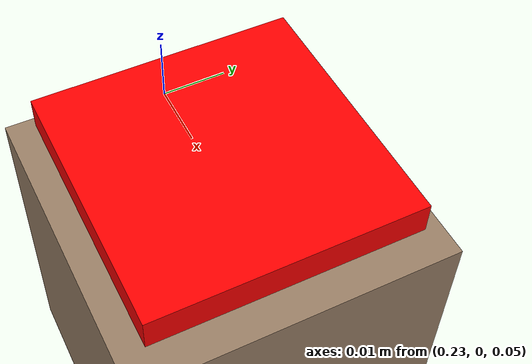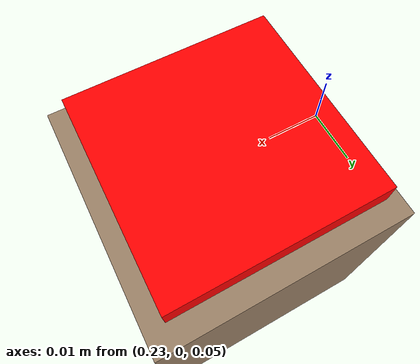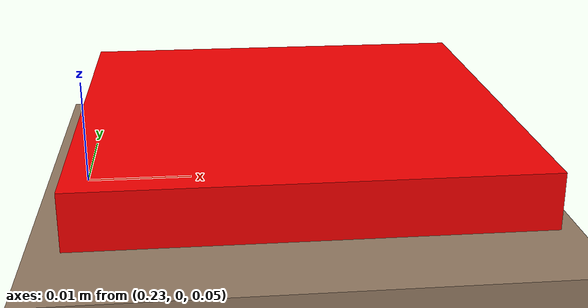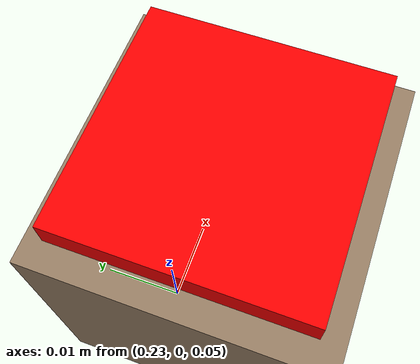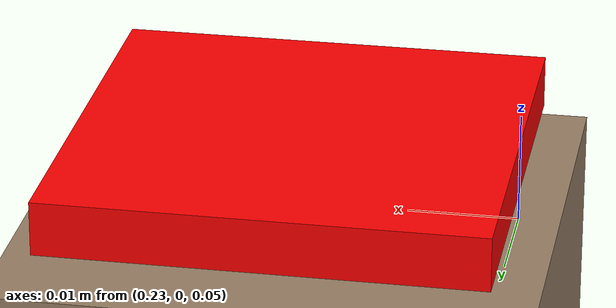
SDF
<?xml version="1.0" ?>
<!-- SO-ARM101 Tracking World - Gazebo Harmonic -->
<sdf version="1.9">
  <world name="tracking_world">

    <!-- Physics -->
    <physics name="default_physics" type="ode">
      <max_step_size>0.005</max_step_size>
      <real_time_factor>1.0</real_time_factor>
    </physics>

    <!-- Required plugins -->
    <plugin filename="gz-sim-physics-system" name="gz::sim::systems::Physics"/>
    <plugin filename="gz-sim-scene-broadcaster-system" name="gz::sim::systems::SceneBroadcaster"/>
    <plugin filename="gz-sim-user-commands-system" name="gz::sim::systems::UserCommands"/>
    <plugin filename="gz-sim-sensors-system" name="gz::sim::systems::Sensors">
      <render_engine>ogre2</render_engine>
    </plugin>

    <!-- Lighting -->
    <light type="directional" name="sun">
      <cast_shadows>true</cast_shadows>
      <pose>0 0 10 0 0 0</pose>
      <diffuse>0.8 0.8 0.8 1</diffuse>
      <specular>0.2 0.2 0.2 1</specular>
      <direction>-0.5 0.1 -0.9</direction>
    </light>

    <!-- Ground plane -->
    <model name="ground_plane">
      <static>true</static>
      <link name="link">
        <collision name="collision">
          <geometry><plane><normal>0 0 1</normal><size>10 10</size></plane></geometry>
        </collision>
        <visual name="visual">
          <geometry><plane><normal>0 0 1</normal><size>10 10</size></plane></geometry>
          <material>
            <ambient>0.8 0.8 0.8 1</ambient>
            <diffuse>0.8 0.8 0.8 1</diffuse>
          </material>
        </visual>
      </link>
    </model>

    <!-- Table (workspace surface) -->
    <model name="table">
      <static>true</static>
      <pose>0.2 0 0.025 0 0 0</pose>
      <link name="link">
        <collision name="collision">
          <geometry><box><size>0.6 0.6 0.05</size></box></geometry>
        </collision>
        <visual name="visual">
          <geometry><box><size>0.6 0.6 0.05</size></box></geometry>
          <material>
            <ambient>0.6 0.5 0.4 1</ambient>
            <diffuse>0.6 0.5 0.4 1</diffuse>
          </material>
        </visual>
      </link>
    </model>

    <!-- Overhead camera (fixed, looking down at the workspace) -->
    <model name="overhead_camera">
      <static>true</static>
      <!-- Position: above the table, angled down -->
      <pose>0.2 0 0.7 0 1.2 0</pose>
      <link name="camera_link">
        <sensor name="scene_camera" type="camera">
          <camera>
            <horizontal_fov>1.047</horizontal_fov>
            <image>
              <width>640</width>
              <height>480</height>
              <format>R8G8B8</format>
            </image>
            <clip>
              <near>0.05</near>
              <far>10</far>
            </clip>
          </camera>
          <always_on>true</always_on>
          <update_rate>30</update_rate>
          <visualize>true</visualize>
          <topic>/camera/image</topic>
        </sensor>
      </link>
    </model>

    <!-- Colored square (red, on the table surface) -->
    <model name="colored_square">
      <static>false</static>
      <pose>0.25 0 0.055 0 0 0</pose>
      <link name="link">
        <inertial>
          <mass>0.01</mass>
          <inertia>
            <ixx>1e-7</ixx><iyy>1e-7</iyy><izz>1e-7</izz>
          </inertia>
        </inertial>
        <collision name="collision">
          <geometry><box><size>0.04 0.04 0.005</size></box></geometry>
        </collision>
        <visual name="visual">
          <geometry><box><size>0.04 0.04 0.005</size></box></geometry>
          <material>
            <ambient>1.0 0.0 0.0 1</ambient>
            <diffuse>1.0 0.0 0.0 1</diffuse>
            <specular>0.5 0.0 0.0 1</specular>
          </material>
        </visual>
      </link>
    </model>

  </world>
</sdf>
